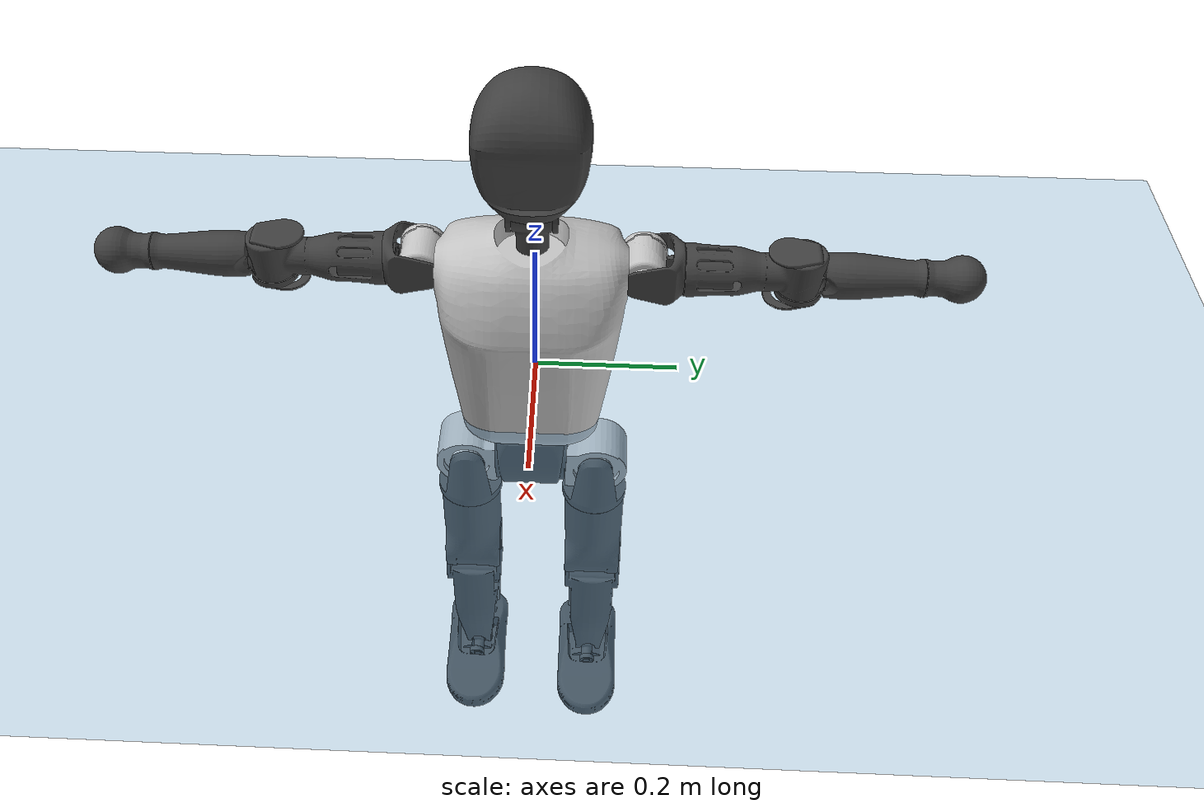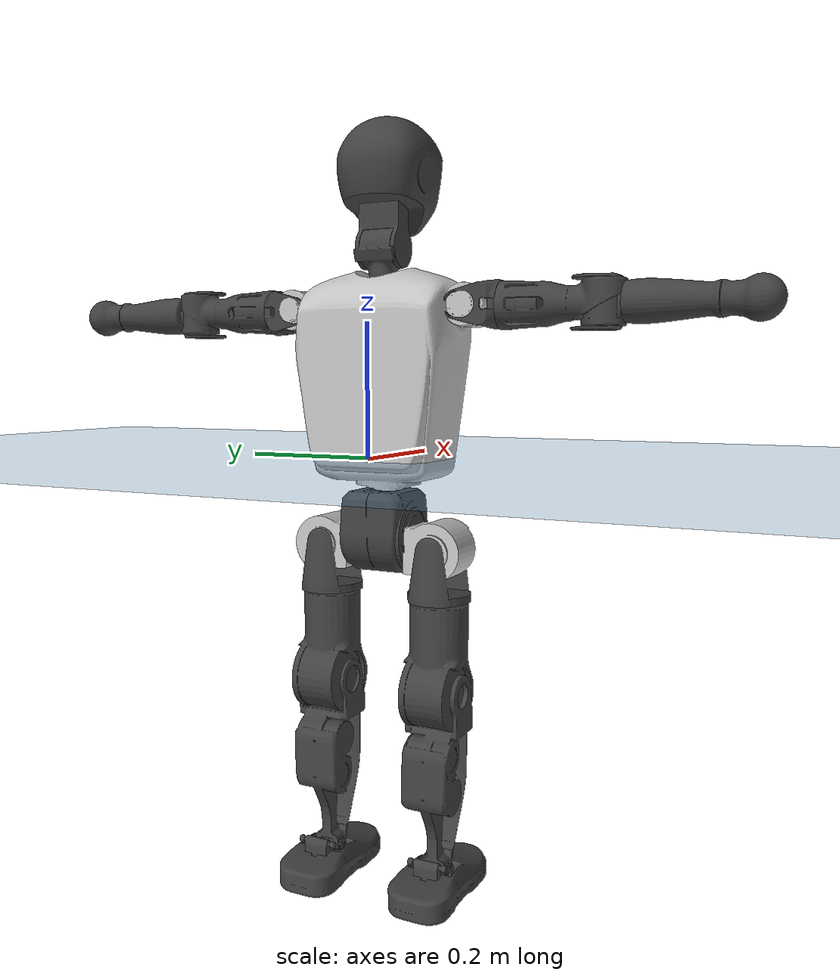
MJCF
<mujoco model="T1">
  <compiler angle="radian" assetdir="assets" balanceinertia="true" inertiafromgeom="false"/>

  <option timestep="0.005" density="1.2" viscosity="2e-05"/>

  <size nkey="1"/>

  <visual>
    <quality shadowsize="8192"/>
    <map shadowclip="0.5"/>
  </visual>

  <default>
    <default class="/">
      <joint armature="0.01" damping="0.01" frictionloss="0.1"/>
      <geom contype="0" conaffinity="0" group="1" solref="-1000 -80"/>
      <site size="0.01 0.005 0.005" group="5"/>
      <general forcelimited="true" biastype="affine" gainprm="25" biasprm="0 -25 -0.6"/>
      <default class="t1">
        <geom rgba="0.25 0.25 0.25 1"/>
        <default class="visual">
          <geom type="mesh" group="2"/>
        </default>
        <default class="collision">
          <geom group="3"/>
        </default>
        <default class="foot">
          <geom size="0.1115 0.05 0.015" type="box" condim="6" group="4" priority="1" solimp="0.015 1 0.015"/>
        </default>
        <default class="reward_collision_sphere">
          <geom group="5" rgba="1 0 0 1"/>
        </default>
      </default>
    </default>
  </default>

  <asset>
    <texture type="skybox" colorspace="auto" name="//unnamed_texture_0" builtin="gradient" rgb1="0.95 0.95 0.95" rgb2="0.95 0.95 0.95" width="100" height="600"/>
    <texture type="2d" colorspace="auto" name="texplane" builtin="checker" rgb1="0.345 0.575 0.748" rgb2="0.345 0.575 0.748" markrgb="1 1 1" width="512" height="512"/>
    <material name="MatPlane" class="/" texture="texplane" texuniform="true" texrepeat="2 2" specular="0.9"/>
    <mesh name="Trunk" class="/" file="Trunk.stl"/>
    <mesh name="H1" class="/" file="H1.stl"/>
    <mesh name="H2" class="/" file="H2.stl"/>
    <mesh name="AL1" class="/" file="AL1.stl"/>
    <mesh name="AL2" class="/" file="AL2.stl"/>
    <mesh name="AL3" class="/" file="AL3.stl"/>
    <mesh name="left_hand_link" class="/" file="left_hand_link.stl"/>
    <mesh name="AR1" class="/" file="AR1.stl"/>
    <mesh name="AR2" class="/" file="AR2.stl"/>
    <mesh name="AR3" class="/" file="AR3.stl"/>
    <mesh name="right_hand_link" class="/" file="right_hand_link.stl"/>
    <mesh name="Waist" class="/" file="Waist.stl"/>
    <mesh name="Hip_Pitch_Left" class="/" file="Hip_Pitch_Left.stl"/>
    <mesh name="Hip_Roll_Left" class="/" file="Hip_Roll_Left.stl"/>
    <mesh name="Hip_Yaw_Left" class="/" file="Hip_Yaw_Left.stl"/>
    <mesh name="Shank_Left" class="/" file="Shank_Left.stl"/>
    <mesh name="Ankle_Cross_Left" class="/" file="Ankle_Cross_Left.stl"/>
    <mesh name="left_foot_link" class="/" file="left_foot_link.stl"/>
    <mesh name="Hip_Pitch_Right" class="/" file="Hip_Pitch_Right.stl"/>
    <mesh name="Hip_Roll_Right" class="/" file="Hip_Roll_Right.stl"/>
    <mesh name="Hip_Yaw_Right" class="/" file="Hip_Yaw_Right.stl"/>
    <mesh name="Shank_Right" class="/" file="Shank_Right.stl"/>
    <mesh name="Ankle_Cross_Right" class="/" file="Ankle_Cross_Right.stl"/>
    <mesh name="right_foot_link" class="/" file="right_foot_link.stl"/>
  </asset>

  <worldbody>
    <geom name="floor" class="/" size="100 100 0.125" type="plane" group="0" material="MatPlane"/>
    <light name="toplight_shadow" class="/" pos="0 0 5" dir="0.0990148 0.0990148 -0.990148" type="directional" ambient="0.04 0.04 0.04" diffuse="0.55 0.55 0.55" specular="0.12 0.12 0.12"/>
    <light name="toplight_fill" class="/" pos="0 0 5" dir="0.0990148 0.0990148 -0.990148" type="directional" castshadow="false" ambient="0.04 0.04 0.04" diffuse="0.3 0.3 0.3" specular="0.08 0.08 0.08"/>
    <body name="trunk" childclass="t1" pos="0.000250917 -0.00214025 0.000581602" quat="1 -0.000130785 0.000177955 -0.00038264">
      <inertial pos="0.0405144 -1.5557e-05 0.106318" quat="0.999978 -0.00234361 -0.00605755 -0.00158732" mass="7.67533" diaginertia="0.0204615 0.0431537 0.0587357"/>
      <joint name="//unnamed_joint_0" type="free" armature="0" damping="0" frictionloss="0"/>
      <geom name="//unnamed_geom_1" class="visual" rgba="0.76 0.76 0.76 1" mesh="Trunk"/>
      <geom name="//unnamed_geom_2" class="collision" size="0.0660366 0.0880487 0.132073" pos="0.0445924 0 0.121364" type="box"/>
      <geom name="//unnamed_geom_3" class="reward_collision_sphere" size="0.101256" pos="0.0445924 0 0.101137"/>
      <geom name="//unnamed_geom_4" class="reward_collision_sphere" size="0.0132073" pos="0.0445924 0.0753854 0"/>
      <geom name="//unnamed_geom_5" class="reward_collision_sphere" size="0.0132073" pos="0.0445924 -0.0753854 0"/>
      <geom name="//unnamed_geom_6" class="reward_collision_sphere" size="0.0132073" pos="0.0445924 0.0948969 0.182046"/>
      <geom name="//unnamed_geom_7" class="reward_collision_sphere" size="0.0132073" pos="0.0445924 -0.0948969 0.182046"/>
      <site name="imu" pos="-0.00606637 -0.0126283 0.00278389" size="0.00880487"/>
      <camera name="track" pos="0 -1.77377 0" quat="0.707107 0.707107 0 0" mode="trackcom"/>
      <camera name="ego_camera" pos="0.0906712 0 0.424775" quat="-0.5 -0.5 0.5 0.5"/>
      <body name="H1" pos="0.0455282 0.000381501 0.245875" quat="1 4.38029e-05 0.000180369 -3.93396e-05">
        <inertial pos="-0.000987848 -0.00110749 0.059024" quat="0.765116 -0.0250193 0.00736783 0.643365" mass="0.297711" diaginertia="5.34889e-05 0.000123443 0.000154806"/>
        <joint name="AAHead_yaw" pos="0 0 0" axis="-0.0104281 -0.00675223 0.999923" stiffness="0.00191363" range="-1.59642 1.55476" armature="0.00912527" damping="0.0102779" frictionloss="0.0807562"/>
        <geom name="//unnamed_geom_8" class="visual" mesh="H1"/>
        <body name="H2" pos="0.00165568 0.000667549 0.062563" quat="1 1.46922e-05 -3.54059e-05 -4.91343e-05">
          <inertial pos="0.00538891 -0.00184973 0.100102" quat="0.988918 0.101267 -0.0751912 -0.078314" mass="0.420188" diaginertia="0.00045281 0.000995494 0.00177431"/>
          <joint name="Head_pitch" pos="0 0 0" axis="0.00952277 -0.999942 0.00509387" range="-1.20547 0.357996" armature="0.00838257" damping="0.00726478" frictionloss="0.0901855"/>
          <geom name="//unnamed_geom_9" class="visual" mesh="H2"/>
          <geom name="//unnamed_geom_10" class="collision" size="0.070439" pos="0.00743207 0 0.11125"/>
          <geom name="//unnamed_geom_11" class="reward_collision_sphere" size="0.0792439" pos="0.0148641 0 0.101137"/>
        </body>
      </body>
      <body name="AL1" pos="0.0447764 0.0948886 0.220776" quat="1 -8.73873e-05 4.41634e-05 0.000231172">
        <inertial pos="-0.00107287 0.0387057 -0.00268408" quat="0.502993 0.501824 -0.509477 0.48539" mass="0.373134" diaginertia="0.000317919 0.000731379 0.000323031"/>
        <joint name="Left_Shoulder_Pitch" pos="0 0 0" axis="0.00317391 0.99991 0.0130082" range="-3.31182 1.22724" armature="0.00927905" damping="0.0118794" frictionloss="0.0857154"/>
        <geom name="//unnamed_geom_12" class="visual" rgba="0.76 0.76 0.76 1" mesh="AL1"/>
        <body name="AL2" pos="0.00181491 0.0409728 -0.00208407" quat="0.999999 0.000924204 0.000367437 -0.000561845">
          <inertial pos="0.00321426 0.0309269 1.23805e-06" quat="0.488354 0.511472 -0.487921 0.511702" mass="0.107121" diaginertia="9.15736e-05 0.000186664 0.000183654"/>
          <joint name="Left_Shoulder_Roll" pos="0 0 0" axis="-0.999901 -0.0109813 -0.00880485" range="-1.52017 1.75899" armature="0.0089565" damping="0" frictionloss="0.0992641"/>
          <geom name="//unnamed_geom_13" class="visual" mesh="AL2"/>
          <body name="AL3" pos="0.00251453 0.0566809 0.00142175" quat="0.999999 0.000415693 0.000751728 -0.000788323">
            <inertial pos="-9.43788e-05 0.0733641 0.000353923" quat="0.70384 0.710357 -0.00147139 -0.000278117" mass="0.715019" diaginertia="0.00291591 0.0071911 0.000631527"/>
            <joint name="Left_Elbow_Pitch" pos="0 0 0" axis="0.00763882 -0.999945 0.00715933" range="-2.2204 2.21489" armature="0.0100007" damping="0" frictionloss="0.0964747"/>
            <geom name="//unnamed_geom_14" class="visual" mesh="AL3"/>
            <geom name="//unnamed_geom_15" class="collision" size="0.0264146 0.0660366" pos="0 0.0443444 0" quat="0.707105 0.707108 0 0" type="cylinder"/>
            <geom name="//unnamed_geom_16" class="reward_collision_sphere" size="0.0316975"/>
            <body name="left_hand_link" pos="0.00116103 0.131063 -0.00152334" quat="1 0.000674151 0.000200201 -0.000117001">
              <inertial pos="-0.000227944 0.0975577 -0.00166648" quat="0.709222 0.704985 -0.000145575 0.000668832" mass="0.224874" diaginertia="0.00185022 0.00449368 0.000224022"/>
              <joint name="Left_Elbow_Yaw" pos="0 0 0" axis="0.00917697 0.00518693 0.999944" stiffness="0.00357637" range="-2.44096 0.0113982" armature="0.00927694" damping="0.0128492" frictionloss="0.0918995"/>
              <geom name="//unnamed_geom_17" class="visual" mesh="left_hand_link"/>
              <geom name="//unnamed_geom_18" class="collision" size="0.0264146 0.0770426" pos="0 0.115295 0" quat="0.707105 0.707108 0 0" type="cylinder"/>
              <geom name="//unnamed_geom_19" class="reward_collision_sphere" size="0.0440244"/>
              <geom name="//unnamed_geom_20" class="reward_collision_sphere" size="0.0308171" pos="0 0.0975576 0"/>
              <geom name="//unnamed_geom_21" class="reward_collision_sphere" size="0.0308171" pos="0 0.190681 0"/>
            </body>
          </body>
        </body>
      </body>
      <body name="AR1" pos="0.0429778 -0.0940297 0.221172" quat="1 7.45996e-05 0.000376347 0.00024892">
        <inertial pos="-5.42379e-05 -0.0426069 0.00250532" quat="0.505605 0.496942 -0.503639 0.493721" mass="0.36156" diaginertia="0.000298193 0.000704842 0.000313039"/>
        <joint name="Right_Shoulder_Pitch" pos="0 0 0" axis="0.00188565 -0.99999 0.00400324" range="-1.20647 3.31121" armature="0.0083476" damping="0.0019499" frictionloss="0.0834649"/>
        <geom name="//unnamed_geom_22" class="visual" rgba="0.76 0.76 0.76 1" mesh="AR1"/>
        <body name="AR2" pos="0.000434878 -0.0383248 -0.000216836" quat="1 -1.43958e-06 0.000373673 9.83115e-05">
          <inertial pos="0.00355849 -0.0335789 -0.0023805" quat="0.513979 0.485305 -0.512465 0.487528" mass="0.108543" diaginertia="8.81021e-05 0.00018095 0.000179049"/>
          <joint name="Right_Shoulder_Roll" pos="0 0 0" axis="-0.999945 -0.00987961 0.00347982" stiffness="0.0109739" range="-1.72031 1.62156" armature="0.00882079" damping="0" frictionloss="0.0882881"/>
          <geom name="//unnamed_geom_23" class="visual" mesh="AR2"/>
          <body name="AR3" pos="0.00132547 -0.0539329 -0.00134761" quat="1 0.000241934 -7.8098e-05 0.000161889">
            <inertial pos="-0.00089542 -0.0764026 0.000679448" quat="0.707979 0.706233 -0.00099589 0.000993685" mass="0.692998" diaginertia="0.00290554 0.00711043 0.000657176"/>
            <joint name="Right_Elbow_Pitch" pos="0 0 0" axis="-0.00224634 0.999995 0.00217766" range="-2.26612 2.26741" armature="0.00995411" damping="0.00949132" frictionloss="0.076661"/>
            <geom name="//unnamed_geom_24" class="visual" mesh="AR3"/>
            <geom name="//unnamed_geom_25" class="collision" size="0.0264146 0.0660366" pos="0 -0.0443444 0" quat="0.707105 0.707108 0 0" type="cylinder"/>
            <geom name="//unnamed_geom_26" class="reward_collision_sphere" size="0.0316975"/>
            <body name="right_hand_link" pos="-0.000181432 -0.130524 -0.000322394" quat="1 -6.84918e-05 0.000521236 -0.000398339">
              <inertial pos="0.000675397 -0.0975287 -0.00191259" quat="0.712501 0.701596 0.00814427 0.00630837" mass="0.230386" diaginertia="0.00178899 0.00445699 0.000230035"/>
              <joint name="Right_Elbow_Yaw" pos="0 0 0" axis="-0.00157743 0.000538367 0.999999" range="-0.0528566 2.49158" armature="0.00907813" damping="0.0116718" frictionloss="0.0836975"/>
              <geom name="//unnamed_geom_27" class="visual" mesh="right_hand_link"/>
              <geom name="//unnamed_geom_28" class="collision" size="0.0264146 0.0770426" pos="0 -0.115295 0" quat="0.707105 0.707108 0 0" type="cylinder"/>
              <geom name="//unnamed_geom_29" class="reward_collision_sphere" size="0.0440244"/>
              <geom name="//unnamed_geom_30" class="reward_collision_sphere" size="0.0308171" pos="0 -0.0975576 0"/>
              <geom name="//unnamed_geom_31" class="reward_collision_sphere" size="0.0308171" pos="0 -0.190681 0"/>
            </body>
          </body>
        </body>
      </body>
      <body name="Waist" pos="0.0468563 -0.00105709 -0.117335" quat="1 2.07684e-05 -7.26313e-06 -5.9697e-05">
        <inertial pos="0.000145308 -8.83895e-05 0.00806883" quat="0.983706 0.00275226 -0.179716 0.00403983" mass="1.73336" diaginertia="0.00118249 0.00290189 0.00503206"/>
        <joint name="Waist" pos="0 0 0" axis="0.00879122 -0.010404 0.999907" range="-1.56801 1.56499" armature="0.00857929" damping="0.0231934" frictionloss="0.0777784"/>
        <geom name="//unnamed_geom_32" class="visual" mesh="Waist"/>
        <body name="Hip_Pitch_Left" pos="0.00241749 0.0958401 8.78013e-05" quat="1 -0.000122245 8.10393e-05 7.26455e-05">
          <inertial pos="0.0032697 -0.00659358 -0.0210065" quat="0.975702 0.218398 0.0103732 0.0141434" mass="0.709983" diaginertia="0.000411598 0.000802071 0.00131939"/>
          <joint name="Left_Hip_Pitch" pos="0 0 0" axis="-0.00037634 0.999999 0.00111262" range="-1.79399 1.62311" armature="0.00877679" damping="0" frictionloss="0.0919757"/>
          <geom name="//unnamed_geom_33" class="visual" rgba="0.76 0.76 0.76 1" mesh="Hip_Pitch_Left"/>
          <body name="Hip_Roll_Left" pos="0.00220979 -0.00139172 -0.0181749" quat="1 0.000277411 0.000172261 -0.000108053">
            <inertial pos="-0.000258851 0.00221967 -0.054664" quat="0.708173 0.00189046 -0.00353044 0.706027" mass="0.251516" diaginertia="0.000395246 0.000784993 0.000526061"/>
            <joint name="Left_Hip_Roll" pos="0 0 0" axis="-0.999993 0.00276627 0.00247847" range="-1.57701 0.201211" armature="0.00902762" damping="0.00648876" frictionloss="0.0807004"/>
            <geom name="//unnamed_geom_34" class="visual" mesh="Hip_Roll_Left"/>
            <geom name="//unnamed_geom_35" class="reward_collision_sphere" size="0.0484268"/>
            <body name="Hip_Yaw_Left" pos="0.00041833 0.00124643 -0.0816692" quat="1 0.000219341 -5.21428e-05 -0.00030814">
              <inertial pos="-0.00465672 -0.000376416 -0.0898847" quat="0.688224 -0.0319912 -0.0374637 0.723824" mass="1.43338" diaginertia="0.00579529 0.0136816 0.00275028"/>
              <joint name="Left_Hip_Yaw" pos="0 0 0" axis="0.00469565 0.0104452 -0.999934" range="-1.00177 0.96666" armature="0.00876409" damping="0.00474119" frictionloss="0.0896182"/>
              <geom name="//unnamed_geom_36" class="visual" mesh="Hip_Yaw_Left"/>
              <geom name="//unnamed_geom_37" class="collision" size="0.0440244 0.070439" type="cylinder"/>
              <body name="Shank_Left" pos="-0.00771538 0.00207278 -0.138636" quat="1 -0.000185056 -0.000149722 9.51216e-05">
                <inertial pos="-0.00549792 -0.00238943 -0.125845" quat="0.997558 0.00115574 -0.0217505 0.066357" mass="1.17324" diaginertia="0.00808202 0.0189348 0.00202044"/>
                <joint name="Left_Knee_Pitch" pos="0 0 0" axis="0.00748546 0.99997 -0.00193139" range="0.00862068 2.34542" armature="0.00848642" damping="0.0134409" frictionloss="0.0994788"/>
                <geom name="//unnamed_geom_38" class="visual" mesh="Shank_Left"/>
                <geom name="//unnamed_geom_39" class="collision" size="0.0440244 0.0660366" pos="0 0 -0.121364" type="cylinder"/>
                <geom name="//unnamed_geom_40" class="reward_collision_sphere" size="0.0572317"/>
                <body name="Ankle_Cross_Left" pos="-0.00111095 -0.00164012 -0.285056" quat="1 -1.58659e-05 -4.29114e-06 3.9096e-05">
                  <inertial pos="-0.0030123 -0.000207996 -0.00721279" quat="0.445094 0.551324 0.552254 0.439259" mass="0.0472653" diaginertia="6.52452e-06 1.31632e-05 1.16665e-05"/>
                  <joint name="Left_Ankle_Pitch" pos="0 0 0" axis="0.013765 0.999886 -0.0062644" range="-0.860371 0.370686" armature="0.00880643" damping="0.005707" frictionloss="0.0870845"/>
                  <geom name="//unnamed_geom_41" class="visual" mesh="Ankle_Cross_Left"/>
                  <body name="left_foot_link" pos="-0.000231147 0.000576876 -0.0123306" quat="0.999999 0.000154201 0.000131938 0.00137929">
                    <inertial pos="0.00251701 0.000699171 -0.00881345" quat="-0.00698739 0.625191 0.00631381 0.780415" mass="0.467968" diaginertia="0.000610552 0.0013101 0.00226107"/>
                    <joint name="Left_Ankle_Roll" pos="0 0 0" axis="-0.999994 -0.00238974 0.00249314" range="-0.438719 0.427427" armature="0.00874898" damping="0" frictionloss="0.0857404"/>
                    <geom name="//unnamed_geom_42" class="visual" mesh="left_foot_link"/>
                    <geom name="left_foot" class="foot" size="0.106825 0.0412188 0.0120233" pos="0.00743207 0 -0.0151705"/>
                    <geom name="//unnamed_geom_44" class="reward_collision_sphere" size="0.0457853" pos="0.00743207 0 -0.0151705"/>
                    <geom name="//unnamed_geom_45" class="reward_collision_sphere" size="0.0264146" pos="0.0706047 -0.0203984 -0.0151705"/>
                    <geom name="//unnamed_geom_46" class="reward_collision_sphere" size="0.0264146" pos="-0.0520245 -0.0203984 -0.0151705"/>
                    <site name="left_foot" class="foot" pos="0.00743207 0 -0.0151705" size="0.00880487"/>
                  </body>
                </body>
              </body>
            </body>
          </body>
        </body>
        <body name="Hip_Pitch_Right" pos="-0.00268214 -0.0945681 0.000971168" quat="0.999999 0.00101581 0.000262914 -0.000365711">
          <inertial pos="-0.000467977 0.00769669 -0.0158224" quat="0.973439 -0.228514 0.013853 -0.00237794" mass="0.715698" diaginertia="0.000414745 0.000814899 0.00136069"/>
          <joint name="Right_Hip_Pitch" pos="0 0 0" axis="0.00205449 -0.999991 -0.00365008" stiffness="0.00136225" range="-1.57447 1.79788" armature="0.00870849" damping="0" frictionloss="0.0957515"/>
          <geom name="//unnamed_geom_47" class="visual" rgba="0.76 0.76 0.76 1" mesh="Hip_Pitch_Right"/>
          <body name="Hip_Roll_Right" pos="0.00213944 0.00125763 -0.020262" quat="1 -0.000103588 0.000292842 0.00010936">
            <inertial pos="-0.00132651 -0.000831475 -0.0563174" quat="0.708543 -0.00611772 -0.00693784 0.705607" mass="0.268921" diaginertia="0.000392264 0.000826162 0.000542784"/>
            <joint name="Right_Hip_Roll" pos="0 0 0" axis="-0.999982 -0.00469116 0.00386407" stiffness="0.00173033" range="-0.222633 1.59089" armature="0.00906039" damping="0.00376613" frictionloss="0.0857865"/>
            <geom name="//unnamed_geom_48" class="visual" mesh="Hip_Roll_Right"/>
            <geom name="//unnamed_geom_49" class="reward_collision_sphere" size="0.0484268"/>
            <body name="Hip_Yaw_Right" pos="-0.000389236 1.43042e-05 -0.0825209" quat="1 -0.000181496 3.22041e-05 -0.000308944">
              <inertial pos="-0.00504703 -0.00289403 -0.0877015" quat="0.714383 -0.0361563 -0.0321324 0.698081" mass="1.52766" diaginertia="0.00585307 0.0146469 0.00274417"/>
              <joint name="Right_Hip_Yaw" pos="0 0 0" axis="0.000871632 0.00051892 -0.999999" stiffness="0.0107071" range="-0.982908 0.997462" armature="0.00761524" damping="0" frictionloss="0.092327"/>
              <geom name="//unnamed_geom_50" class="visual" mesh="Hip_Yaw_Right"/>
              <geom name="//unnamed_geom_51" class="collision" size="0.0440244 0.070439" type="cylinder"/>
              <body name="Shank_Right" pos="-0.00765098 -0.000593279 -0.135678" quat="1 -4.93851e-05 -2.935e-05 9.20242e-05">
                <inertial pos="-0.00178382 0.00229359 -0.124788" quat="0.999367 -0.00826986 -0.0233497 -0.0255185" mass="1.26173" diaginertia="0.00850922 0.0199557 0.00212936"/>
                <joint name="Right_Knee_Pitch" pos="0 0 0" axis="-0.00492024 -0.999983 0.00308897" range="-2.3416 -0.00837512" armature="0.00834728" damping="0.00279342" frictionloss="0.0890703"/>
                <geom name="//unnamed_geom_52" class="visual" mesh="Shank_Right"/>
                <geom name="//unnamed_geom_53" class="collision" size="0.0440244 0.0660366" pos="0 0 -0.121364" type="cylinder"/>
                <geom name="//unnamed_geom_54" class="reward_collision_sphere" size="0.0572317"/>
                <body name="Ankle_Cross_Right" pos="0.00151938 -0.00117663 -0.28299" quat="1 -0.000313368 0.000290063 0.000174663">
                  <inertial pos="-0.00352538 0.00111456 -0.0077466" quat="0.443443 0.552378 0.550841 0.441374" mass="0.0486522" diaginertia="6.73446e-06 1.40768e-05 1.18823e-05"/>
                  <joint name="Right_Ankle_Pitch" pos="0 0 0" axis="0.00287375 -0.999894 -0.01428" range="-0.33675 0.877962" armature="0.00844408" damping="0.0021631" frictionloss="0.0841515"/>
                  <geom name="//unnamed_geom_55" class="visual" mesh="Ankle_Cross_Right"/>
                  <body name="right_foot_link" pos="0.000631735 -0.00330307 -0.0100768" quat="1 -3.85547e-05 -7.81234e-06 0.000293233">
                    <inertial pos="0.00264813 -8.7083e-05 -0.00788487" quat="0.00405966 0.615432 0.00588968 0.788158" mass="0.467717" diaginertia="0.000631204 0.00130136 0.00230173"/>
                    <joint name="Right_Ankle_Roll" pos="0 0 0" axis="-0.999917 -0.00283169 -0.0125593" range="-0.440994 0.449021" armature="0.00859095" damping="0.00400646" frictionloss="0.0764442"/>
                    <geom name="//unnamed_geom_56" class="visual" mesh="right_foot_link"/>
                    <geom name="right_foot" class="foot" size="0.100808 0.0411809 0.0126419" pos="0.00743207 0 -0.0151705"/>
                    <geom name="//unnamed_geom_58" class="reward_collision_sphere" size="0.0352195"/>
                    <geom name="//unnamed_geom_59" class="reward_collision_sphere" size="0.0264146" pos="0.00743207 0 -0.0151705"/>
                    <geom name="//unnamed_geom_60" class="reward_collision_sphere" size="0.0264146" pos="0.0706047 0.0203984 -0.0151705"/>
                    <geom name="//unnamed_geom_61" class="reward_collision_sphere" size="0.0264146" pos="-0.0520245 0.0203984 -0.0151705"/>
                    <site name="right_foot" class="foot" pos="0.00743207 0 -0.0151705" size="0.00880487"/>
                  </body>
                </body>
              </body>
            </body>
          </body>
        </body>
      </body>
    </body>
  </worldbody>

  <contact>
    <pair class="/" geom1="floor" geom2="left_foot" name="//unnamed_contact_0"/>
    <pair class="/" geom1="floor" geom2="right_foot" name="//unnamed_contact_1"/>
  </contact>

  <actuator>
    <general name="AAHead_yaw" class="/" joint="AAHead_yaw" forcerange="-5.59096 5.59096" gainprm="22.5135" biasprm="0 -22.5135 -0.500259"/>
    <general name="Head_pitch" class="/" joint="Head_pitch" forcerange="-6.04485 6.04485" gainprm="22.5135" biasprm="0 -22.5135 -0.500259"/>
    <general name="Left_Shoulder_Pitch" class="/" joint="Left_Shoulder_Pitch" forcerange="-15.965 15.965" gainprm="22.5135" biasprm="0 -22.5135 -0.500259"/>
    <general name="Left_Shoulder_Roll" class="/" joint="Left_Shoulder_Roll" forcerange="-15.4447 15.4447" gainprm="22.5135" biasprm="0 -22.5135 -0.500259"/>
    <general name="Left_Elbow_Pitch" class="/" joint="Left_Elbow_Pitch" forcerange="-17.1269 17.1269" gainprm="22.5135" biasprm="0 -22.5135 -0.500259"/>
    <general name="Left_Elbow_Yaw" class="/" joint="Left_Elbow_Yaw" forcerange="-17.5329 17.5329" gainprm="22.5135" biasprm="0 -22.5135 -0.500259"/>
    <general name="Right_Shoulder_Pitch" class="/" joint="Right_Shoulder_Pitch" forcerange="-15.9605 15.9605" gainprm="22.5135" biasprm="0 -22.5135 -0.500259"/>
    <general name="Right_Shoulder_Roll" class="/" joint="Right_Shoulder_Roll" forcerange="-17.0807 17.0807" gainprm="22.5135" biasprm="0 -22.5135 -0.500259"/>
    <general name="Right_Elbow_Pitch" class="/" joint="Right_Elbow_Pitch" forcerange="-16.573 16.573" gainprm="22.5135" biasprm="0 -22.5135 -0.500259"/>
    <general name="Right_Elbow_Yaw" class="/" joint="Right_Elbow_Yaw" forcerange="-14.6063 14.6063" gainprm="22.5135" biasprm="0 -22.5135 -0.500259"/>
    <general name="Waist" class="/" joint="Waist" forcerange="-26.492 26.492" gainprm="22.5135" biasprm="0 -22.5135 -0.500259"/>
    <general name="Left_Hip_Pitch" class="/" joint="Left_Hip_Pitch" forcerange="-41.0194 41.0194" gainprm="22.5135" biasprm="0 -22.5135 -0.500259"/>
    <general name="Left_Hip_Roll" class="/" joint="Left_Hip_Roll" forcerange="-26.9601 26.9601" gainprm="22.5135" biasprm="0 -22.5135 -0.500259"/>
    <general name="Left_Hip_Yaw" class="/" joint="Left_Hip_Yaw" forcerange="-25.6381 25.6381" gainprm="22.5135" biasprm="0 -22.5135 -0.500259"/>
    <general name="Left_Knee_Pitch" class="/" joint="Left_Knee_Pitch" forcerange="-52.7553 52.7553" gainprm="22.5135" biasprm="0 -22.5135 -0.500259"/>
    <general name="Left_Ankle_Pitch" class="/" joint="Left_Ankle_Pitch" forcerange="-16.9305 16.9305" gainprm="22.5135" biasprm="0 -22.5135 -0.500259"/>
    <general name="Left_Ankle_Roll" class="/" joint="Left_Ankle_Roll" forcerange="-13.2493 13.2493" gainprm="22.5135" biasprm="0 -22.5135 -0.500259"/>
    <general name="Right_Hip_Pitch" class="/" joint="Right_Hip_Pitch" forcerange="-38.9823 38.9823" gainprm="22.5135" biasprm="0 -22.5135 -0.500259"/>
    <general name="Right_Hip_Roll" class="/" joint="Right_Hip_Roll" forcerange="-26.497 26.497" gainprm="22.5135" biasprm="0 -22.5135 -0.500259"/>
    <general name="Right_Hip_Yaw" class="/" joint="Right_Hip_Yaw" forcerange="-27.0356 27.0356" gainprm="22.5135" biasprm="0 -22.5135 -0.500259"/>
    <general name="Right_Knee_Pitch" class="/" joint="Right_Knee_Pitch" forcerange="-51.9013 51.9013" gainprm="22.5135" biasprm="0 -22.5135 -0.500259"/>
    <general name="Right_Ankle_Pitch" class="/" joint="Right_Ankle_Pitch" forcerange="-16.3168 16.3168" gainprm="22.5135" biasprm="0 -22.5135 -0.500259"/>
    <general name="Right_Ankle_Roll" class="/" joint="Right_Ankle_Roll" forcerange="-13.7097 13.7097" gainprm="22.5135" biasprm="0 -22.5135 -0.500259"/>
  </actuator>

  <sensor>
    <gyro site="imu" name="imu_angular_velocity"/>
    <velocimeter site="imu" name="imu_linear_velocity"/>
    <framelinvel objtype="site" objname="left_foot" name="left_foot_global_linear_velocity"/>
    <framelinvel objtype="site" objname="right_foot" name="right_foot_global_linear_velocity"/>
  </sensor>

  <keyframe>
    <key name="home" qpos="0 0 0.6385 1 0 0 0 0 0 0 1.4 0 -0.4 0 -1.4 0 0.4 0 -0.4 0 0 0.8 -0.4 0 0.4 0 0 -0.8 0.4 0"/>
  </keyframe>
</mujoco>
